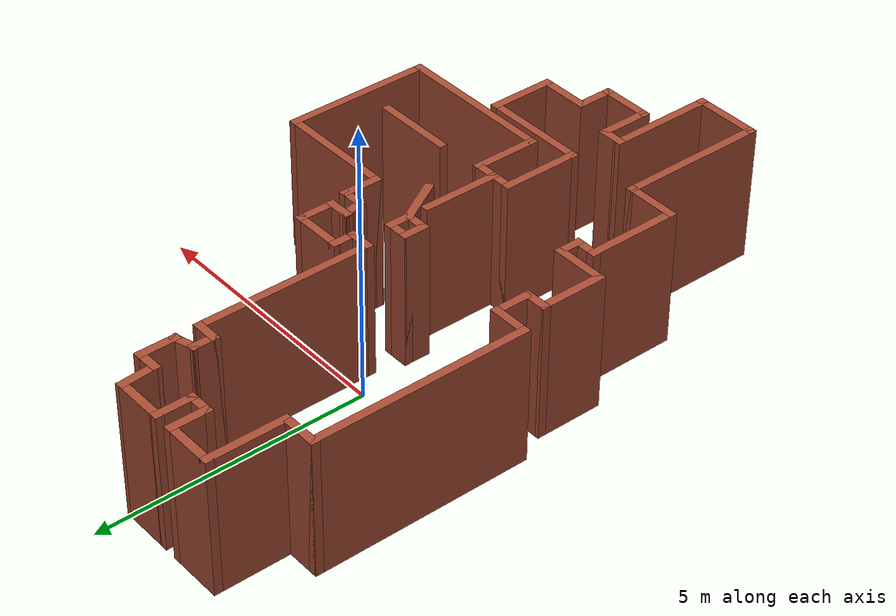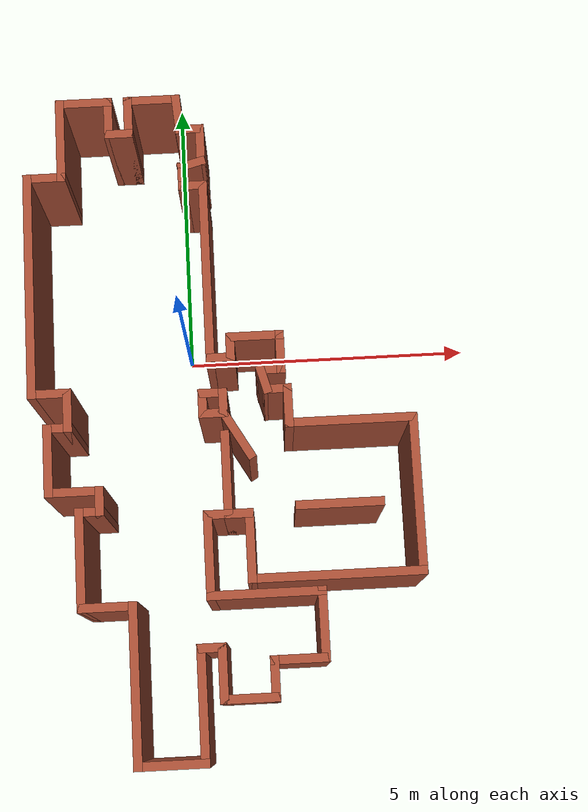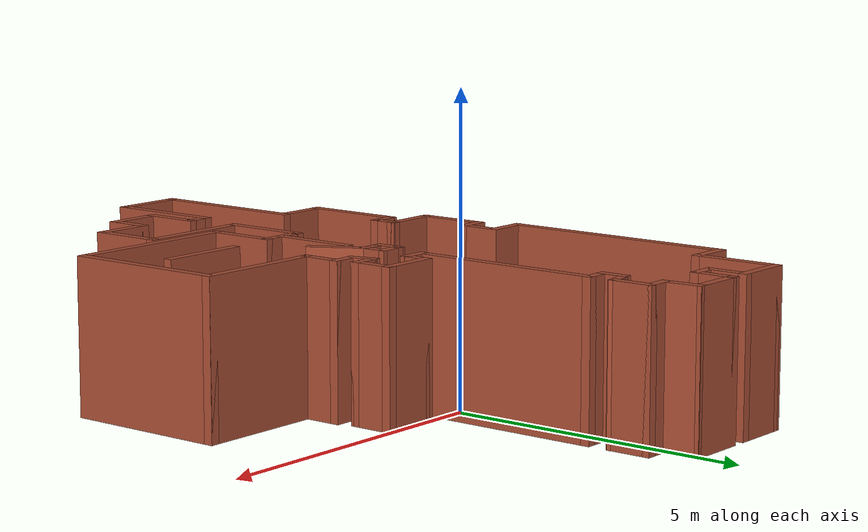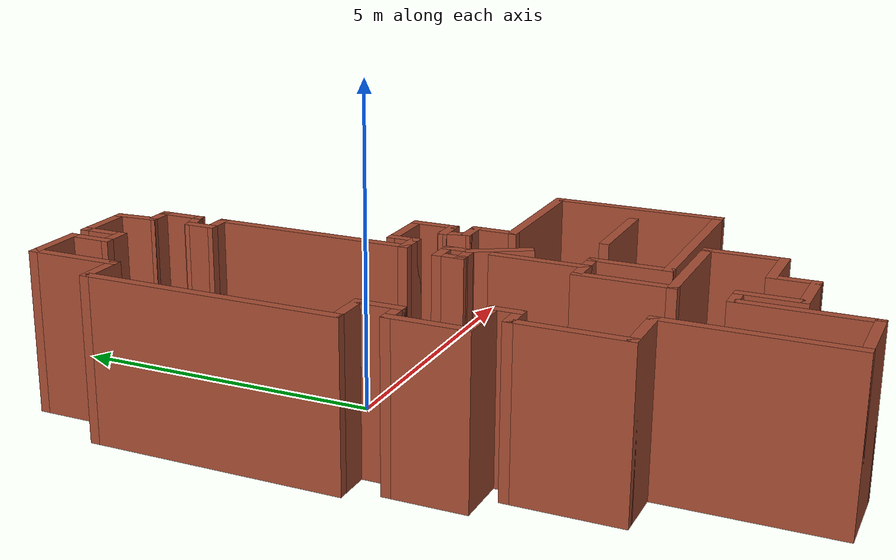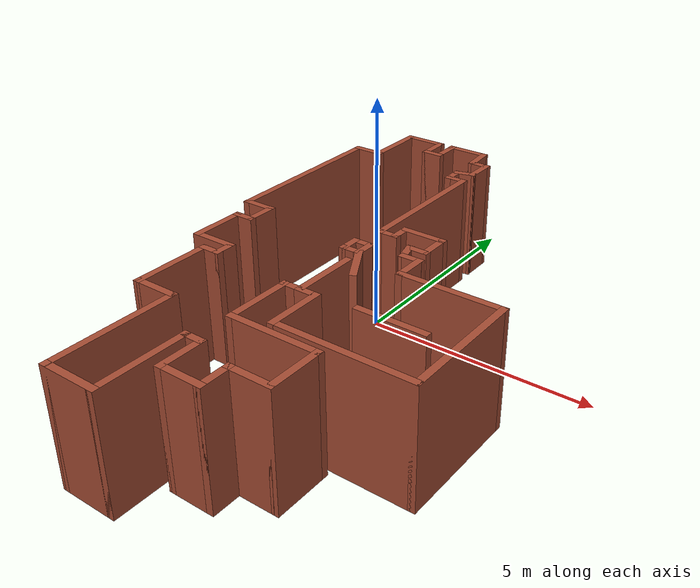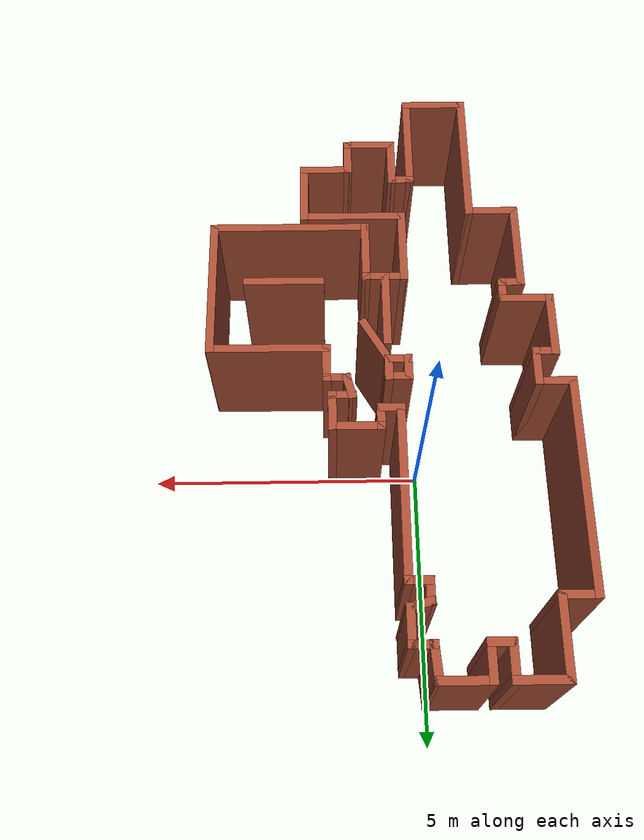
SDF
<?xml version='1.0'?>
<sdf version='1.6'>
  <model name='map_40'>
    <pose frame=''>0.567957 -1.44281 0 0 -0 0</pose>
    <link name='Wall_0'>
      <collision name='Wall_0_Collision'>
        <geometry>
          <box>
            <size>1 0.15 2.5</size>
          </box>
        </geometry>
        <pose frame=''>0 0 1.25 0 -0 0</pose>
      </collision>
      <visual name='Wall_0_Visual'>
        <pose frame=''>0 0 1.25 0 -0 0</pose>
        <geometry>
          <box>
            <size>1 0.15 2.5</size>
          </box>
        </geometry>
        <material>
          <script>
            <uri>file://media/materials/scripts/gazebo.material</uri>
            <name>Gazebo/Bricks</name>
          </script>
          <ambient>1 1 1 1</ambient>
        </material>
        <meta>
          <layer>0</layer>
        </meta>
      </visual>
      <pose frame=''>-1 5.72202 0 0 -0 3.14159</pose>
    </link>
    <link name='Wall_10'>
      <collision name='Wall_10_Collision'>
        <geometry>
          <box>
            <size>1 0.15 2.5</size>
          </box>
        </geometry>
        <pose frame=''>0 0 1.25 0 -0 0</pose>
      </collision>
      <visual name='Wall_10_Visual'>
        <pose frame=''>0 0 1.25 0 -0 0</pose>
        <geometry>
          <box>
            <size>1 0.15 2.5</size>
          </box>
        </geometry>
        <material>
          <script>
            <uri>file://media/materials/scripts/gazebo.material</uri>
            <name>Gazebo/Bricks</name>
          </script>
          <ambient>1 1 1 1</ambient>
        </material>
        <meta>
          <layer>0</layer>
        </meta>
      </visual>
      <pose frame=''>-2.2 5.72202 0 0 -0 3.14159</pose>
    </link>
    <link name='Wall_11'>
      <collision name='Wall_11_Collision'>
        <geometry>
          <box>
            <size>1.5 0.15 2.5</size>
          </box>
        </geometry>
        <pose frame=''>0 0 1.25 0 -0 0</pose>
      </collision>
      <visual name='Wall_11_Visual'>
        <pose frame=''>0 0 1.25 0 -0 0</pose>
        <geometry>
          <box>
            <size>1.5 0.15 2.5</size>
          </box>
        </geometry>
        <material>
          <script>
            <uri>file://media/materials/scripts/gazebo.material</uri>
            <name>Gazebo/Bricks</name>
          </script>
          <ambient>1 1 1 1</ambient>
        </material>
        <meta>
          <layer>0</layer>
        </meta>
      </visual>
      <pose frame=''>-2.625 5.04702 0 0 -0 -1.5708</pose>
    </link>
    <link name='Wall_12'>
      <collision name='Wall_12_Collision'>
        <geometry>
          <box>
            <size>0.75 0.15 2.5</size>
          </box>
        </geometry>
        <pose frame=''>0 0 1.25 0 -0 0</pose>
      </collision>
      <visual name='Wall_12_Visual'>
        <pose frame=''>0 0 1.25 0 -0 0</pose>
        <geometry>
          <box>
            <size>0.75 0.15 2.5</size>
          </box>
        </geometry>
        <material>
          <script>
            <uri>file://media/materials/scripts/gazebo.material</uri>
            <name>Gazebo/Bricks</name>
          </script>
          <ambient>1 1 1 1</ambient>
        </material>
        <meta>
          <layer>0</layer>
        </meta>
      </visual>
      <pose frame=''>-2.925 4.37202 0 0 -0 3.14159</pose>
    </link>
    <link name='Wall_13'>
      <collision name='Wall_13_Collision'>
        <geometry>
          <box>
            <size>4 0.15 2.5</size>
          </box>
        </geometry>
        <pose frame=''>0 0 1.25 0 -0 0</pose>
      </collision>
      <visual name='Wall_13_Visual'>
        <pose frame=''>0 0 1.25 0 -0 0</pose>
        <geometry>
          <box>
            <size>4 0.15 2.5</size>
          </box>
        </geometry>
        <material>
          <script>
            <uri>file://media/materials/scripts/gazebo.material</uri>
            <name>Gazebo/Bricks</name>
          </script>
          <ambient>1 1 1 1</ambient>
        </material>
        <meta>
          <layer>0</layer>
        </meta>
      </visual>
      <pose frame=''>-3.225 2.44702 0 0 -0 -1.5708</pose>
    </link>
    <link name='Wall_16'>
      <collision name='Wall_16_Collision'>
        <geometry>
          <box>
            <size>0.75 0.15 2.5</size>
          </box>
        </geometry>
        <pose frame=''>0 0 1.25 0 -0 0</pose>
      </collision>
      <visual name='Wall_16_Visual'>
        <pose frame=''>0 0 1.25 0 -0 0</pose>
        <geometry>
          <box>
            <size>0.75 0.15 2.5</size>
          </box>
        </geometry>
        <material>
          <script>
            <uri>file://media/materials/scripts/gazebo.material</uri>
            <name>Gazebo/Bricks</name>
          </script>
          <ambient>1 1 1 1</ambient>
        </material>
        <meta>
          <layer>0</layer>
        </meta>
      </visual>
      <pose frame=''>-2.925 0.522023 0 0 -0 0</pose>
    </link>
    <link name='Wall_17'>
      <collision name='Wall_17_Collision'>
        <geometry>
          <box>
            <size>0.75 0.15 2.5</size>
          </box>
        </geometry>
        <pose frame=''>0 0 1.25 0 -0 0</pose>
      </collision>
      <visual name='Wall_17_Visual'>
        <pose frame=''>0 0 1.25 0 -0 0</pose>
        <geometry>
          <box>
            <size>0.75 0.15 2.5</size>
          </box>
        </geometry>
        <material>
          <script>
            <uri>file://media/materials/scripts/gazebo.material</uri>
            <name>Gazebo/Bricks</name>
          </script>
          <ambient>1 1 1 1</ambient>
        </material>
        <meta>
          <layer>0</layer>
        </meta>
      </visual>
      <pose frame=''>-2.625 0.222023 0 0 -0 -1.5708</pose>
    </link>
    <link name='Wall_18'>
      <collision name='Wall_18_Collision'>
        <geometry>
          <box>
            <size>0.5 0.15 2.5</size>
          </box>
        </geometry>
        <pose frame=''>0 0 1.25 0 -0 0</pose>
      </collision>
      <visual name='Wall_18_Visual'>
        <pose frame=''>0 0 1.25 0 -0 0</pose>
        <geometry>
          <box>
            <size>0.5 0.15 2.5</size>
          </box>
        </geometry>
        <material>
          <script>
            <uri>file://media/materials/scripts/gazebo.material</uri>
            <name>Gazebo/Bricks</name>
          </script>
          <ambient>1 1 1 1</ambient>
        </material>
        <meta>
          <layer>0</layer>
        </meta>
      </visual>
      <pose frame=''>-2.8 -0.077977 0 0 -0 3.14159</pose>
    </link>
    <link name='Wall_19'>
      <collision name='Wall_19_Collision'>
        <geometry>
          <box>
            <size>1.25 0.15 2.5</size>
          </box>
        </geometry>
        <pose frame=''>0 0 1.25 0 -0 0</pose>
      </collision>
      <visual name='Wall_19_Visual'>
        <pose frame=''>0 0 1.25 0 -0 0</pose>
        <geometry>
          <box>
            <size>1.25 0.15 2.5</size>
          </box>
        </geometry>
        <material>
          <script>
            <uri>file://media/materials/scripts/gazebo.material</uri>
            <name>Gazebo/Bricks</name>
          </script>
          <ambient>1 1 1 1</ambient>
        </material>
        <meta>
          <layer>0</layer>
        </meta>
      </visual>
      <pose frame=''>-2.975 -0.627977 0 0 -0 -1.5708</pose>
    </link>
    <link name='Wall_20'>
      <collision name='Wall_20_Collision'>
        <geometry>
          <box>
            <size>1 0.15 2.5</size>
          </box>
        </geometry>
        <pose frame=''>0 0 1.25 0 -0 0</pose>
      </collision>
      <visual name='Wall_20_Visual'>
        <pose frame=''>0 0 1.25 0 -0 0</pose>
        <geometry>
          <box>
            <size>1 0.15 2.5</size>
          </box>
        </geometry>
        <material>
          <script>
            <uri>file://media/materials/scripts/gazebo.material</uri>
            <name>Gazebo/Bricks</name>
          </script>
          <ambient>1 1 1 1</ambient>
        </material>
        <meta>
          <layer>0</layer>
        </meta>
      </visual>
      <pose frame=''>-2.55 -1.17798 0 0 -0 0</pose>
    </link>
    <link name='Wall_21'>
      <collision name='Wall_21_Collision'>
        <geometry>
          <box>
            <size>0.5 0.15 2.5</size>
          </box>
        </geometry>
        <pose frame=''>0 0 1.25 0 -0 0</pose>
      </collision>
      <visual name='Wall_21_Visual'>
        <pose frame=''>0 0 1.25 0 -0 0</pose>
        <geometry>
          <box>
            <size>0.5 0.15 2.5</size>
          </box>
        </geometry>
        <material>
          <script>
            <uri>file://media/materials/scripts/gazebo.material</uri>
            <name>Gazebo/Bricks</name>
          </script>
          <ambient>1 1 1 1</ambient>
        </material>
        <meta>
          <layer>0</layer>
        </meta>
      </visual>
      <pose frame=''>-2.125 -1.35298 0 0 -0 -1.5708</pose>
    </link>
    <link name='Wall_22'>
      <collision name='Wall_22_Collision'>
        <geometry>
          <box>
            <size>0.5 0.15 2.5</size>
          </box>
        </geometry>
        <pose frame=''>0 0 1.25 0 -0 0</pose>
      </collision>
      <visual name='Wall_22_Visual'>
        <pose frame=''>0 0 1.25 0 -0 0</pose>
        <geometry>
          <box>
            <size>0.5 0.15 2.5</size>
          </box>
        </geometry>
        <material>
          <script>
            <uri>file://media/materials/scripts/gazebo.material</uri>
            <name>Gazebo/Bricks</name>
          </script>
          <ambient>1 1 1 1</ambient>
        </material>
        <meta>
          <layer>0</layer>
        </meta>
      </visual>
      <pose frame=''>-2.3 -1.52798 0 0 -0 3.14159</pose>
    </link>
    <link name='Wall_23'>
      <collision name='Wall_23_Collision'>
        <geometry>
          <box>
            <size>1.75 0.15 2.5</size>
          </box>
        </geometry>
        <pose frame=''>0 0 1.25 0 -0 0</pose>
      </collision>
      <visual name='Wall_23_Visual'>
        <pose frame=''>0 0 1.25 0 -0 0</pose>
        <geometry>
          <box>
            <size>1.75 0.15 2.5</size>
          </box>
        </geometry>
        <material>
          <script>
            <uri>file://media/materials/scripts/gazebo.material</uri>
            <name>Gazebo/Bricks</name>
          </script>
          <ambient>1 1 1 1</ambient>
        </material>
        <meta>
          <layer>0</layer>
        </meta>
      </visual>
      <pose frame=''>-2.475 -2.32798 0 0 -0 -1.5708</pose>
    </link>
    <link name='Wall_24'>
      <collision name='Wall_24_Collision'>
        <geometry>
          <box>
            <size>1 0.15 2.5</size>
          </box>
        </geometry>
        <pose frame=''>0 0 1.25 0 -0 0</pose>
      </collision>
      <visual name='Wall_24_Visual'>
        <pose frame=''>0 0 1.25 0 -0 0</pose>
        <geometry>
          <box>
            <size>1 0.15 2.5</size>
          </box>
        </geometry>
        <material>
          <script>
            <uri>file://media/materials/scripts/gazebo.material</uri>
            <name>Gazebo/Bricks</name>
          </script>
          <ambient>1 1 1 1</ambient>
        </material>
        <meta>
          <layer>0</layer>
        </meta>
      </visual>
      <pose frame=''>-2.05 -3.12798 0 0 -0 0</pose>
    </link>
    <link name='Wall_25'>
      <collision name='Wall_25_Collision'>
        <geometry>
          <box>
            <size>2.75 0.15 2.5</size>
          </box>
        </geometry>
        <pose frame=''>0 0 1.25 0 -0 0</pose>
      </collision>
      <visual name='Wall_25_Visual'>
        <pose frame=''>0 0 1.25 0 -0 0</pose>
        <geometry>
          <box>
            <size>2.75 0.15 2.5</size>
          </box>
        </geometry>
        <material>
          <script>
            <uri>file://media/materials/scripts/gazebo.material</uri>
            <name>Gazebo/Bricks</name>
          </script>
          <ambient>1 1 1 1</ambient>
        </material>
        <meta>
          <layer>0</layer>
        </meta>
      </visual>
      <pose frame=''>-1.625 -4.42798 0 0 -0 -1.5708</pose>
    </link>
    <link name='Wall_26'>
      <collision name='Wall_26_Collision'>
        <geometry>
          <box>
            <size>1.25 0.15 2.5</size>
          </box>
        </geometry>
        <pose frame=''>0 0 1.25 0 -0 0</pose>
      </collision>
      <visual name='Wall_26_Visual'>
        <pose frame=''>0 0 1.25 0 -0 0</pose>
        <geometry>
          <box>
            <size>1.25 0.15 2.5</size>
          </box>
        </geometry>
        <material>
          <script>
            <uri>file://media/materials/scripts/gazebo.material</uri>
            <name>Gazebo/Bricks</name>
          </script>
          <ambient>1 1 1 1</ambient>
        </material>
        <meta>
          <layer>0</layer>
        </meta>
      </visual>
      <pose frame=''>-1.075 -5.72798 0 0 -0 0</pose>
    </link>
    <link name='Wall_27'>
      <collision name='Wall_27_Collision'>
        <geometry>
          <box>
            <size>2 0.15 2.5</size>
          </box>
        </geometry>
        <pose frame=''>0 0 1.25 0 -0 0</pose>
      </collision>
      <visual name='Wall_27_Visual'>
        <pose frame=''>0 0 1.25 0 -0 0</pose>
        <geometry>
          <box>
            <size>2 0.15 2.5</size>
          </box>
        </geometry>
        <material>
          <script>
            <uri>file://media/materials/scripts/gazebo.material</uri>
            <name>Gazebo/Bricks</name>
          </script>
          <ambient>1 1 1 1</ambient>
        </material>
        <meta>
          <layer>0</layer>
        </meta>
      </visual>
      <pose frame=''>-0.525 -4.80298 0 0 -0 1.5708</pose>
    </link>
    <link name='Wall_28'>
      <collision name='Wall_28_Collision'>
        <geometry>
          <box>
            <size>0.5 0.15 2.5</size>
          </box>
        </geometry>
        <pose frame=''>0 0 1.25 0 -0 0</pose>
      </collision>
      <visual name='Wall_28_Visual'>
        <pose frame=''>0 0 1.25 0 -0 0</pose>
        <geometry>
          <box>
            <size>0.5 0.15 2.5</size>
          </box>
        </geometry>
        <material>
          <script>
            <uri>file://media/materials/scripts/gazebo.material</uri>
            <name>Gazebo/Bricks</name>
          </script>
          <ambient>1 1 1 1</ambient>
        </material>
        <meta>
          <layer>0</layer>
        </meta>
      </visual>
      <pose frame=''>-0.35 -3.87798 0 0 -0 0</pose>
    </link>
    <link name='Wall_29'>
      <collision name='Wall_29_Collision'>
        <geometry>
          <box>
            <size>1 0.15 2.5</size>
          </box>
        </geometry>
        <pose frame=''>0 0 1.25 0 -0 0</pose>
      </collision>
      <visual name='Wall_29_Visual'>
        <pose frame=''>0 0 1.25 0 -0 0</pose>
        <geometry>
          <box>
            <size>1 0.15 2.5</size>
          </box>
        </geometry>
        <material>
          <script>
            <uri>file://media/materials/scripts/gazebo.material</uri>
            <name>Gazebo/Bricks</name>
          </script>
          <ambient>1 1 1 1</ambient>
        </material>
        <meta>
          <layer>0</layer>
        </meta>
      </visual>
      <pose frame=''>-0.175 -4.30298 0 0 -0 -1.5708</pose>
    </link>
    <link name='Wall_3'>
      <collision name='Wall_3_Collision'>
        <geometry>
          <box>
            <size>0.75 0.15 2.5</size>
          </box>
        </geometry>
        <pose frame=''>0 0 1.25 0 -0 0</pose>
      </collision>
      <visual name='Wall_3_Visual'>
        <pose frame=''>0 0 1.25 0 -0 0</pose>
        <geometry>
          <box>
            <size>0.75 0.15 2.5</size>
          </box>
        </geometry>
        <material>
          <script>
            <uri>file://media/materials/scripts/gazebo.material</uri>
            <name>Gazebo/Bricks</name>
          </script>
          <ambient>1 1 1 1</ambient>
        </material>
        <meta>
          <layer>0</layer>
        </meta>
      </visual>
      <pose frame=''>-1.425 5.42202 0 0 -0 -1.5708</pose>
    </link>
    <link name='Wall_30'>
      <collision name='Wall_30_Collision'>
        <geometry>
          <box>
            <size>1 0.15 2.5</size>
          </box>
        </geometry>
        <pose frame=''>0 0 1.25 0 -0 0</pose>
      </collision>
      <visual name='Wall_30_Visual'>
        <pose frame=''>0 0 1.25 0 -0 0</pose>
        <geometry>
          <box>
            <size>1 0.15 2.5</size>
          </box>
        </geometry>
        <material>
          <script>
            <uri>file://media/materials/scripts/gazebo.material</uri>
            <name>Gazebo/Bricks</name>
          </script>
          <ambient>1 1 1 1</ambient>
        </material>
        <meta>
          <layer>0</layer>
        </meta>
      </visual>
      <pose frame=''>0.25 -4.72798 0 0 -0 0</pose>
    </link>
    <link name='Wall_31'>
      <collision name='Wall_31_Collision'>
        <geometry>
          <box>
            <size>0.75 0.15 2.5</size>
          </box>
        </geometry>
        <pose frame=''>0 0 1.25 0 -0 0</pose>
      </collision>
      <visual name='Wall_31_Visual'>
        <pose frame=''>0 0 1.25 0 -0 0</pose>
        <geometry>
          <box>
            <size>0.75 0.15 2.5</size>
          </box>
        </geometry>
        <material>
          <script>
            <uri>file://media/materials/scripts/gazebo.material</uri>
            <name>Gazebo/Bricks</name>
          </script>
          <ambient>1 1 1 1</ambient>
        </material>
        <meta>
          <layer>0</layer>
        </meta>
      </visual>
      <pose frame=''>0.675 -4.42798 0 0 -0 1.5708</pose>
    </link>
    <link name='Wall_32'>
      <collision name='Wall_32_Collision'>
        <geometry>
          <box>
            <size>1 0.15 2.5</size>
          </box>
        </geometry>
        <pose frame=''>0 0 1.25 0 -0 0</pose>
      </collision>
      <visual name='Wall_32_Visual'>
        <pose frame=''>0 0 1.25 0 -0 0</pose>
        <geometry>
          <box>
            <size>1 0.15 2.5</size>
          </box>
        </geometry>
        <material>
          <script>
            <uri>file://media/materials/scripts/gazebo.material</uri>
            <name>Gazebo/Bricks</name>
          </script>
          <ambient>1 1 1 1</ambient>
        </material>
        <meta>
          <layer>0</layer>
        </meta>
      </visual>
      <pose frame=''>1.1 -4.12798 0 0 -0 0</pose>
    </link>
    <link name='Wall_33'>
      <collision name='Wall_33_Collision'>
        <geometry>
          <box>
            <size>1.25 0.15 2.5</size>
          </box>
        </geometry>
        <pose frame=''>0 0 1.25 0 -0 0</pose>
      </collision>
      <visual name='Wall_33_Visual'>
        <pose frame=''>0 0 1.25 0 -0 0</pose>
        <geometry>
          <box>
            <size>1.25 0.15 2.5</size>
          </box>
        </geometry>
        <material>
          <script>
            <uri>file://media/materials/scripts/gazebo.material</uri>
            <name>Gazebo/Bricks</name>
          </script>
          <ambient>1 1 1 1</ambient>
        </material>
        <meta>
          <layer>0</layer>
        </meta>
      </visual>
      <pose frame=''>1.525 -3.57798 0 0 -0 1.5708</pose>
    </link>
    <link name='Wall_34'>
      <collision name='Wall_34_Collision'>
        <geometry>
          <box>
            <size>2 0.15 2.5</size>
          </box>
        </geometry>
        <pose frame=''>0 0 1.25 0 -0 0</pose>
      </collision>
      <visual name='Wall_34_Visual'>
        <pose frame=''>0 0 1.25 0 -0 0</pose>
        <geometry>
          <box>
            <size>2 0.15 2.5</size>
          </box>
        </geometry>
        <material>
          <script>
            <uri>file://media/materials/scripts/gazebo.material</uri>
            <name>Gazebo/Bricks</name>
          </script>
          <ambient>1 1 1 1</ambient>
        </material>
        <meta>
          <layer>0</layer>
        </meta>
      </visual>
      <pose frame=''>0.6 -3.02798 0 0 -0 3.14159</pose>
    </link>
    <link name='Wall_35'>
      <collision name='Wall_35_Collision'>
        <geometry>
          <box>
            <size>1.5 0.15 2.5</size>
          </box>
        </geometry>
        <pose frame=''>0 0 1.25 0 -0 0</pose>
      </collision>
      <visual name='Wall_35_Visual'>
        <pose frame=''>0 0 1.25 0 -0 0</pose>
        <geometry>
          <box>
            <size>1.5 0.15 2.5</size>
          </box>
        </geometry>
        <material>
          <script>
            <uri>file://media/materials/scripts/gazebo.material</uri>
            <name>Gazebo/Bricks</name>
          </script>
          <ambient>1 1 1 1</ambient>
        </material>
        <meta>
          <layer>0</layer>
        </meta>
      </visual>
      <pose frame=''>-0.325 -2.35298 0 0 -0 1.5708</pose>
    </link>
    <link name='Wall_36'>
      <collision name='Wall_36_Collision'>
        <geometry>
          <box>
            <size>0.5 0.15 2.5</size>
          </box>
        </geometry>
        <pose frame=''>0 0 1.25 0 -0 0</pose>
      </collision>
      <visual name='Wall_36_Visual'>
        <pose frame=''>0 0 1.25 0 -0 0</pose>
        <geometry>
          <box>
            <size>0.5 0.15 2.5</size>
          </box>
        </geometry>
        <material>
          <script>
            <uri>file://media/materials/scripts/gazebo.material</uri>
            <name>Gazebo/Bricks</name>
          </script>
          <ambient>1 1 1 1</ambient>
        </material>
        <meta>
          <layer>0</layer>
        </meta>
      </visual>
      <pose frame=''>-0.15 -1.67798 0 0 -0 0</pose>
    </link>
    <link name='Wall_37'>
      <collision name='Wall_37_Collision'>
        <geometry>
          <box>
            <size>1.5 0.15 2.5</size>
          </box>
        </geometry>
        <pose frame=''>0 0 1.25 0 -0 0</pose>
      </collision>
      <visual name='Wall_37_Visual'>
        <pose frame=''>0 0 1.25 0 -0 0</pose>
        <geometry>
          <box>
            <size>1.5 0.15 2.5</size>
          </box>
        </geometry>
        <material>
          <script>
            <uri>file://media/materials/scripts/gazebo.material</uri>
            <name>Gazebo/Bricks</name>
          </script>
          <ambient>1 1 1 1</ambient>
        </material>
        <meta>
          <layer>0</layer>
        </meta>
      </visual>
      <pose frame=''>0.025 -1.00298 0 0 -0 1.5708</pose>
    </link>
    <link name='Wall_39'>
      <collision name='Wall_39_Collision'>
        <geometry>
          <box>
            <size>0.5 0.15 2.5</size>
          </box>
        </geometry>
        <pose frame=''>0 0 1.25 0 -0 0</pose>
      </collision>
      <visual name='Wall_39_Visual'>
        <pose frame=''>0 0 1.25 0 -0 0</pose>
        <geometry>
          <box>
            <size>0.5 0.15 2.5</size>
          </box>
        </geometry>
        <material>
          <script>
            <uri>file://media/materials/scripts/gazebo.material</uri>
            <name>Gazebo/Bricks</name>
          </script>
          <ambient>1 1 1 1</ambient>
        </material>
        <meta>
          <layer>0</layer>
        </meta>
      </visual>
      <pose frame=''>0.2 -1.67798 0 0 -0 0</pose>
    </link>
    <link name='Wall_4'>
      <collision name='Wall_4_Collision'>
        <geometry>
          <box>
            <size>0.5 0.15 2.5</size>
          </box>
        </geometry>
        <pose frame=''>0 0 1.25 0 -0 0</pose>
      </collision>
      <visual name='Wall_4_Visual'>
        <pose frame=''>0 0 1.25 0 -0 0</pose>
        <geometry>
          <box>
            <size>0.5 0.15 2.5</size>
          </box>
        </geometry>
        <material>
          <script>
            <uri>file://media/materials/scripts/gazebo.material</uri>
            <name>Gazebo/Bricks</name>
          </script>
          <ambient>1 1 1 1</ambient>
        </material>
        <meta>
          <layer>0</layer>
        </meta>
      </visual>
      <pose frame=''>-1.6 5.12202 0 0 -0 3.14159</pose>
    </link>
    <link name='Wall_42'>
      <collision name='Wall_42_Collision'>
        <geometry>
          <box>
            <size>1.25 0.15 2.5</size>
          </box>
        </geometry>
        <pose frame=''>0 0 1.25 0 -0 0</pose>
      </collision>
      <visual name='Wall_42_Visual'>
        <pose frame=''>0 0 1.25 0 -0 0</pose>
        <geometry>
          <box>
            <size>1.25 0.15 2.5</size>
          </box>
        </geometry>
        <material>
          <script>
            <uri>file://media/materials/scripts/gazebo.material</uri>
            <name>Gazebo/Bricks</name>
          </script>
          <ambient>1 1 1 1</ambient>
        </material>
        <meta>
          <layer>0</layer>
        </meta>
      </visual>
      <pose frame=''>0.375 -2.22798 0 0 -0 -1.5708</pose>
    </link>
    <link name='Wall_43'>
      <collision name='Wall_43_Collision'>
        <geometry>
          <box>
            <size>3 0.15 2.5</size>
          </box>
        </geometry>
        <pose frame=''>0 0 1.25 0 -0 0</pose>
      </collision>
      <visual name='Wall_43_Visual'>
        <pose frame=''>0 0 1.25 0 -0 0</pose>
        <geometry>
          <box>
            <size>3 0.15 2.5</size>
          </box>
        </geometry>
        <material>
          <script>
            <uri>file://media/materials/scripts/gazebo.material</uri>
            <name>Gazebo/Bricks</name>
          </script>
          <ambient>1 1 1 1</ambient>
        </material>
        <meta>
          <layer>0</layer>
        </meta>
      </visual>
      <pose frame=''>1.8 -2.77798 0 0 -0 0</pose>
    </link>
    <link name='Wall_44'>
      <collision name='Wall_44_Collision'>
        <geometry>
          <box>
            <size>2.75 0.15 2.5</size>
          </box>
        </geometry>
        <pose frame=''>0 0 1.25 0 -0 0</pose>
      </collision>
      <visual name='Wall_44_Visual'>
        <pose frame=''>0 0 1.25 0 -0 0</pose>
        <geometry>
          <box>
            <size>2.75 0.15 2.5</size>
          </box>
        </geometry>
        <material>
          <script>
            <uri>file://media/materials/scripts/gazebo.material</uri>
            <name>Gazebo/Bricks</name>
          </script>
          <ambient>1 1 1 1</ambient>
        </material>
        <meta>
          <layer>0</layer>
        </meta>
      </visual>
      <pose frame=''>3.225 -1.47798 0 0 -0 1.5708</pose>
    </link>
    <link name='Wall_49'>
      <collision name='Wall_49_Collision'>
        <geometry>
          <box>
            <size>2.25 0.15 2.5</size>
          </box>
        </geometry>
        <pose frame=''>0 0 1.25 0 -0 0</pose>
      </collision>
      <visual name='Wall_49_Visual'>
        <pose frame=''>0 0 1.25 0 -0 0</pose>
        <geometry>
          <box>
            <size>2.25 0.15 2.5</size>
          </box>
        </geometry>
        <material>
          <script>
            <uri>file://media/materials/scripts/gazebo.material</uri>
            <name>Gazebo/Bricks</name>
          </script>
          <ambient>1 1 1 1</ambient>
        </material>
        <meta>
          <layer>0</layer>
        </meta>
      </visual>
      <pose frame=''>2.175 -0.177977 0 0 -0 3.14159</pose>
    </link>
    <link name='Wall_50'>
      <collision name='Wall_50_Collision'>
        <geometry>
          <box>
            <size>0.75 0.15 2.5</size>
          </box>
        </geometry>
        <pose frame=''>0 0 1.25 0 -0 0</pose>
      </collision>
      <visual name='Wall_50_Visual'>
        <pose frame=''>0 0 1.25 0 -0 0</pose>
        <geometry>
          <box>
            <size>0.75 0.15 2.5</size>
          </box>
        </geometry>
        <material>
          <script>
            <uri>file://media/materials/scripts/gazebo.material</uri>
            <name>Gazebo/Bricks</name>
          </script>
          <ambient>1 1 1 1</ambient>
        </material>
        <meta>
          <layer>0</layer>
        </meta>
      </visual>
      <pose frame=''>1.125 0.122023 0 0 -0 1.5708</pose>
    </link>
    <link name='Wall_51'>
      <collision name='Wall_51_Collision'>
        <geometry>
          <box>
            <size>0.5 0.15 2.5</size>
          </box>
        </geometry>
        <pose frame=''>0 0 1.25 0 -0 0</pose>
      </collision>
      <visual name='Wall_51_Visual'>
        <pose frame=''>0 0 1.25 0 -0 0</pose>
        <geometry>
          <box>
            <size>0.5 0.15 2.5</size>
          </box>
        </geometry>
        <material>
          <script>
            <uri>file://media/materials/scripts/gazebo.material</uri>
            <name>Gazebo/Bricks</name>
          </script>
          <ambient>1 1 1 1</ambient>
        </material>
        <meta>
          <layer>0</layer>
        </meta>
      </visual>
      <pose frame=''>0.95 0.422023 0 0 -0 3.14159</pose>
    </link>
    <link name='Wall_52'>
      <collision name='Wall_52_Collision'>
        <geometry>
          <box>
            <size>0.5 0.15 2.5</size>
          </box>
        </geometry>
        <pose frame=''>0 0 1.25 0 -0 0</pose>
      </collision>
      <visual name='Wall_52_Visual'>
        <pose frame=''>0 0 1.25 0 -0 0</pose>
        <geometry>
          <box>
            <size>0.5 0.15 2.5</size>
          </box>
        </geometry>
        <material>
          <script>
            <uri>file://media/materials/scripts/gazebo.material</uri>
            <name>Gazebo/Bricks</name>
          </script>
          <ambient>1 1 1 1</ambient>
        </material>
        <meta>
          <layer>0</layer>
        </meta>
      </visual>
      <pose frame=''>0.729707 0.59106 0 0 -0 1.8326</pose>
    </link>
    <link name='Wall_53'>
      <collision name='Wall_53_Collision'>
        <geometry>
          <box>
            <size>0.5 0.15 2.5</size>
          </box>
        </geometry>
        <pose frame=''>0 0 1.25 0 -0 0</pose>
      </collision>
      <visual name='Wall_53_Visual'>
        <pose frame=''>0 0 1.25 0 -0 0</pose>
        <geometry>
          <box>
            <size>0.5 0.15 2.5</size>
          </box>
        </geometry>
        <material>
          <script>
            <uri>file://media/materials/scripts/gazebo.material</uri>
            <name>Gazebo/Bricks</name>
          </script>
          <ambient>1 1 1 1</ambient>
        </material>
        <meta>
          <layer>0</layer>
        </meta>
      </visual>
      <pose frame=''>0.859413 0.760097 0 0 -0 0</pose>
    </link>
    <link name='Wall_56'>
      <collision name='Wall_56_Collision'>
        <geometry>
          <box>
            <size>0.75 0.15 2.5</size>
          </box>
        </geometry>
        <pose frame=''>0 0 1.25 0 -0 0</pose>
      </collision>
      <visual name='Wall_56_Visual'>
        <pose frame=''>0 0 1.25 0 -0 0</pose>
        <geometry>
          <box>
            <size>0.75 0.15 2.5</size>
          </box>
        </geometry>
        <material>
          <script>
            <uri>file://media/materials/scripts/gazebo.material</uri>
            <name>Gazebo/Bricks</name>
          </script>
          <ambient>1 1 1 1</ambient>
        </material>
        <meta>
          <layer>0</layer>
        </meta>
      </visual>
      <pose frame=''>1.03441 1.0601 0 0 -0 1.5708</pose>
    </link>
    <link name='Wall_57'>
      <collision name='Wall_57_Collision'>
        <geometry>
          <box>
            <size>1 0.15 2.5</size>
          </box>
        </geometry>
        <pose frame=''>0 0 1.25 0 -0 0</pose>
      </collision>
      <visual name='Wall_57_Visual'>
        <pose frame=''>0 0 1.25 0 -0 0</pose>
        <geometry>
          <box>
            <size>1 0.15 2.5</size>
          </box>
        </geometry>
        <material>
          <script>
            <uri>file://media/materials/scripts/gazebo.material</uri>
            <name>Gazebo/Bricks</name>
          </script>
          <ambient>1 1 1 1</ambient>
        </material>
        <meta>
          <layer>0</layer>
        </meta>
      </visual>
      <pose frame=''>0.609413 1.3601 0 0 -0 3.14159</pose>
    </link>
    <link name='Wall_58'>
      <collision name='Wall_58_Collision'>
        <geometry>
          <box>
            <size>0.5 0.15 2.5</size>
          </box>
        </geometry>
        <pose frame=''>0 0 1.25 0 -0 0</pose>
      </collision>
      <visual name='Wall_58_Visual'>
        <pose frame=''>0 0 1.25 0 -0 0</pose>
        <geometry>
          <box>
            <size>0.5 0.15 2.5</size>
          </box>
        </geometry>
        <material>
          <script>
            <uri>file://media/materials/scripts/gazebo.material</uri>
            <name>Gazebo/Bricks</name>
          </script>
          <ambient>1 1 1 1</ambient>
        </material>
        <meta>
          <layer>0</layer>
        </meta>
      </visual>
      <pose frame=''>0.184413 1.1851 0 0 -0 -1.5708</pose>
    </link>
    <link name='Wall_59'>
      <collision name='Wall_59_Collision'>
        <geometry>
          <box>
            <size>0.5 0.15 2.5</size>
          </box>
        </geometry>
        <pose frame=''>0 0 1.25 0 -0 0</pose>
      </collision>
      <visual name='Wall_59_Visual'>
        <pose frame=''>0 0 1.25 0 -0 0</pose>
        <geometry>
          <box>
            <size>0.5 0.15 2.5</size>
          </box>
        </geometry>
        <material>
          <script>
            <uri>file://media/materials/scripts/gazebo.material</uri>
            <name>Gazebo/Bricks</name>
          </script>
          <ambient>1 1 1 1</ambient>
        </material>
        <meta>
          <layer>0</layer>
        </meta>
      </visual>
      <pose frame=''>0.009413 1.0101 0 0 -0 3.14159</pose>
    </link>
    <link name='Wall_60'>
      <collision name='Wall_60_Collision'>
        <geometry>
          <box>
            <size>3.25 0.15 2.5</size>
          </box>
        </geometry>
        <pose frame=''>0 0 1.25 0 -0 0</pose>
      </collision>
      <visual name='Wall_60_Visual'>
        <pose frame=''>0 0 1.25 0 -0 0</pose>
        <geometry>
          <box>
            <size>3.25 0.15 2.5</size>
          </box>
        </geometry>
        <material>
          <script>
            <uri>file://media/materials/scripts/gazebo.material</uri>
            <name>Gazebo/Bricks</name>
          </script>
          <ambient>1 1 1 1</ambient>
        </material>
        <meta>
          <layer>0</layer>
        </meta>
      </visual>
      <pose frame=''>-0.165587 2.5601 0 0 -0 1.5708</pose>
    </link>
    <link name='Wall_61'>
      <collision name='Wall_61_Collision'>
        <geometry>
          <box>
            <size>0.5 0.15 2.5</size>
          </box>
        </geometry>
        <pose frame=''>0 0 1.25 0 -0 0</pose>
      </collision>
      <visual name='Wall_61_Visual'>
        <pose frame=''>0 0 1.25 0 -0 0</pose>
        <geometry>
          <box>
            <size>0.5 0.15 2.5</size>
          </box>
        </geometry>
        <material>
          <script>
            <uri>file://media/materials/scripts/gazebo.material</uri>
            <name>Gazebo/Bricks</name>
          </script>
          <ambient>1 1 1 1</ambient>
        </material>
        <meta>
          <layer>0</layer>
        </meta>
      </visual>
      <pose frame=''>-0.340587 4.1101 0 0 -0 3.14159</pose>
    </link>
    <link name='Wall_62'>
      <collision name='Wall_62_Collision'>
        <geometry>
          <box>
            <size>0.5 0.15 2.5</size>
          </box>
        </geometry>
        <pose frame=''>0 0 1.25 0 -0 0</pose>
      </collision>
      <visual name='Wall_62_Visual'>
        <pose frame=''>0 0 1.25 0 -0 0</pose>
        <geometry>
          <box>
            <size>0.5 0.15 2.5</size>
          </box>
        </geometry>
        <material>
          <script>
            <uri>file://media/materials/scripts/gazebo.material</uri>
            <name>Gazebo/Bricks</name>
          </script>
          <ambient>1 1 1 1</ambient>
        </material>
        <meta>
          <layer>0</layer>
        </meta>
      </visual>
      <pose frame=''>-0.515587 4.2851 0 0 -0 1.5708</pose>
    </link>
    <link name='Wall_63'>
      <collision name='Wall_63_Collision'>
        <geometry>
          <box>
            <size>0.5 0.15 2.5</size>
          </box>
        </geometry>
        <pose frame=''>0 0 1.25 0 -0 0</pose>
      </collision>
      <visual name='Wall_63_Visual'>
        <pose frame=''>0 0 1.25 0 -0 0</pose>
        <geometry>
          <box>
            <size>0.5 0.15 2.5</size>
          </box>
        </geometry>
        <material>
          <script>
            <uri>file://media/materials/scripts/gazebo.material</uri>
            <name>Gazebo/Bricks</name>
          </script>
          <ambient>1 1 1 1</ambient>
        </material>
        <meta>
          <layer>0</layer>
        </meta>
      </visual>
      <pose frame=''>-0.34655 4.50539 0 0 -0 0.261799</pose>
    </link>
    <link name='Wall_64'>
      <collision name='Wall_64_Collision'>
        <geometry>
          <box>
            <size>0.75 0.15 2.5</size>
          </box>
        </geometry>
        <pose frame=''>0 0 1.25 0 -0 0</pose>
      </collision>
      <visual name='Wall_64_Visual'>
        <pose frame=''>0 0 1.25 0 -0 0</pose>
        <geometry>
          <box>
            <size>0.75 0.15 2.5</size>
          </box>
        </geometry>
        <material>
          <script>
            <uri>file://media/materials/scripts/gazebo.material</uri>
            <name>Gazebo/Bricks</name>
          </script>
          <ambient>1 1 1 1</ambient>
        </material>
        <meta>
          <layer>0</layer>
        </meta>
      </visual>
      <pose frame=''>-0.177513 4.85068 0 0 -0 1.5708</pose>
    </link>
    <link name='Wall_65'>
      <collision name='Wall_65_Collision'>
        <geometry>
          <box>
            <size>0.5 0.15 2.5</size>
          </box>
        </geometry>
        <pose frame=''>0 0 1.25 0 -0 0</pose>
      </collision>
      <visual name='Wall_65_Visual'>
        <pose frame=''>0 0 1.25 0 -0 0</pose>
        <geometry>
          <box>
            <size>0.5 0.15 2.5</size>
          </box>
        </geometry>
        <material>
          <script>
            <uri>file://media/materials/scripts/gazebo.material</uri>
            <name>Gazebo/Bricks</name>
          </script>
          <ambient>1 1 1 1</ambient>
        </material>
        <meta>
          <layer>0</layer>
        </meta>
      </visual>
      <pose frame=''>-0.352513 5.15068 0 0 -0 3.14159</pose>
    </link>
    <link name='Wall_66'>
      <collision name='Wall_66_Collision'>
        <geometry>
          <box>
            <size>0.723309 0.15 2.5</size>
          </box>
        </geometry>
        <pose frame=''>0 0 1.25 0 -0 0</pose>
      </collision>
      <visual name='Wall_66_Visual'>
        <pose frame=''>0 0 1.25 0 -0 0</pose>
        <geometry>
          <box>
            <size>0.723309 0.15 2.5</size>
          </box>
        </geometry>
        <material>
          <script>
            <uri>file://media/materials/scripts/gazebo.material</uri>
            <name>Gazebo/Bricks</name>
          </script>
          <ambient>1 1 1 1</ambient>
        </material>
        <meta>
          <layer>0</layer>
        </meta>
      </visual>
      <pose frame=''>-0.551256 5.43635 0 0 -0 1.65372</pose>
    </link>
    <link name='Wall_7'>
      <collision name='Wall_7_Collision'>
        <geometry>
          <box>
            <size>0.75 0.15 2.5</size>
          </box>
        </geometry>
        <pose frame=''>0 0 1.25 0 -0 0</pose>
      </collision>
      <visual name='Wall_7_Visual'>
        <pose frame=''>0 0 1.25 0 -0 0</pose>
        <geometry>
          <box>
            <size>0.75 0.15 2.5</size>
          </box>
        </geometry>
        <material>
          <script>
            <uri>file://media/materials/scripts/gazebo.material</uri>
            <name>Gazebo/Bricks</name>
          </script>
          <ambient>1 1 1 1</ambient>
        </material>
        <meta>
          <layer>0</layer>
        </meta>
      </visual>
      <pose frame=''>-1.775 5.42202 0 0 -0 1.5708</pose>
    </link>
    <link name='Wall_74'>
      <collision name='Wall_74_Collision'>
        <geometry>
          <box>
            <size>1.5 0.15 2.5</size>
          </box>
        </geometry>
        <pose frame=''>0 0 1.25 0 -0 0</pose>
      </collision>
      <visual name='Wall_74_Visual'>
        <pose frame=''>0 0 1.25 0 -0 0</pose>
        <geometry>
          <box>
            <size>1.5 0.15 2.5</size>
          </box>
        </geometry>
        <material>
          <script>
            <uri>file://media/materials/scripts/gazebo.material</uri>
            <name>Gazebo/Bricks</name>
          </script>
          <ambient>1 1 1 1</ambient>
        </material>
        <meta>
          <layer>0</layer>
        </meta>
      </visual>
      <pose frame=''>1.90482 -1.58904 0 0 -0 0</pose>
    </link>
    <link name='Wall_76'>
      <collision name='Wall_76_Collision'>
        <geometry>
          <box>
            <size>0.5 0.15 2.5</size>
          </box>
        </geometry>
        <pose frame=''>0 0 1.25 0 -0 0</pose>
      </collision>
      <visual name='Wall_76_Visual'>
        <pose frame=''>0 0 1.25 0 -0 0</pose>
        <geometry>
          <box>
            <size>0.5 0.15 2.5</size>
          </box>
        </geometry>
        <material>
          <script>
            <uri>file://media/materials/scripts/gazebo.material</uri>
            <name>Gazebo/Bricks</name>
          </script>
          <ambient>1 1 1 1</ambient>
        </material>
        <meta>
          <layer>0</layer>
        </meta>
      </visual>
      <pose frame=''>-0.330278 0.224323 0 0 -0 -1.5708</pose>
    </link>
    <link name='Wall_77'>
      <collision name='Wall_77_Collision'>
        <geometry>
          <box>
            <size>0.5 0.15 2.5</size>
          </box>
        </geometry>
        <pose frame=''>0 0 1.25 0 -0 0</pose>
      </collision>
      <visual name='Wall_77_Visual'>
        <pose frame=''>0 0 1.25 0 -0 0</pose>
        <geometry>
          <box>
            <size>0.5 0.15 2.5</size>
          </box>
        </geometry>
        <material>
          <script>
            <uri>file://media/materials/scripts/gazebo.material</uri>
            <name>Gazebo/Bricks</name>
          </script>
          <ambient>1 1 1 1</ambient>
        </material>
        <meta>
          <layer>0</layer>
        </meta>
      </visual>
      <pose frame=''>-0.155278 0.049323 0 0 -0 0</pose>
    </link>
    <link name='Wall_78'>
      <collision name='Wall_78_Collision'>
        <geometry>
          <box>
            <size>0.5 0.15 2.5</size>
          </box>
        </geometry>
        <pose frame=''>0 0 1.25 0 -0 0</pose>
      </collision>
      <visual name='Wall_78_Visual'>
        <pose frame=''>0 0 1.25 0 -0 0</pose>
        <geometry>
          <box>
            <size>0.5 0.15 2.5</size>
          </box>
        </geometry>
        <material>
          <script>
            <uri>file://media/materials/scripts/gazebo.material</uri>
            <name>Gazebo/Bricks</name>
          </script>
          <ambient>1 1 1 1</ambient>
        </material>
        <meta>
          <layer>0</layer>
        </meta>
      </visual>
      <pose frame=''>0.019722 0.224323 0 0 -0 1.5708</pose>
    </link>
    <link name='Wall_79'>
      <collision name='Wall_79_Collision'>
        <geometry>
          <box>
            <size>0.5 0.15 2.5</size>
          </box>
        </geometry>
        <pose frame=''>0 0 1.25 0 -0 0</pose>
      </collision>
      <visual name='Wall_79_Visual'>
        <pose frame=''>0 0 1.25 0 -0 0</pose>
        <geometry>
          <box>
            <size>0.5 0.15 2.5</size>
          </box>
        </geometry>
        <material>
          <script>
            <uri>file://media/materials/scripts/gazebo.material</uri>
            <name>Gazebo/Bricks</name>
          </script>
          <ambient>1 1 1 1</ambient>
        </material>
        <meta>
          <layer>0</layer>
        </meta>
      </visual>
      <pose frame=''>-0.155278 0.399323 0 0 -0 3.14159</pose>
    </link>
    <link name='Wall_81'>
      <collision name='Wall_81_Collision'>
        <geometry>
          <box>
            <size>1 0.15 2.5</size>
          </box>
        </geometry>
        <pose frame=''>0 0 1.25 0 -0 0</pose>
      </collision>
      <visual name='Wall_81_Visual'>
        <pose frame=''>0 0 1.25 0 -0 0</pose>
        <geometry>
          <box>
            <size>1 0.15 2.5</size>
          </box>
        </geometry>
        <material>
          <script>
            <uri>file://media/materials/scripts/gazebo.material</uri>
            <name>Gazebo/Bricks</name>
          </script>
          <ambient>1 1 1 1</ambient>
        </material>
        <meta>
          <layer>0</layer>
        </meta>
      </visual>
      <pose frame=''>0.232222 -0.318738 0 0 -0 -1.0472</pose>
    </link>
    <static>1</static>
  </model>
</sdf>
